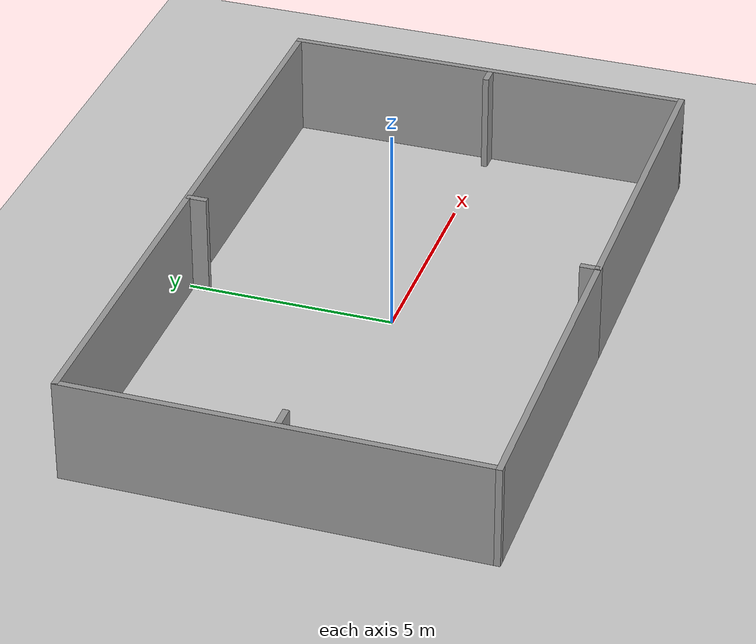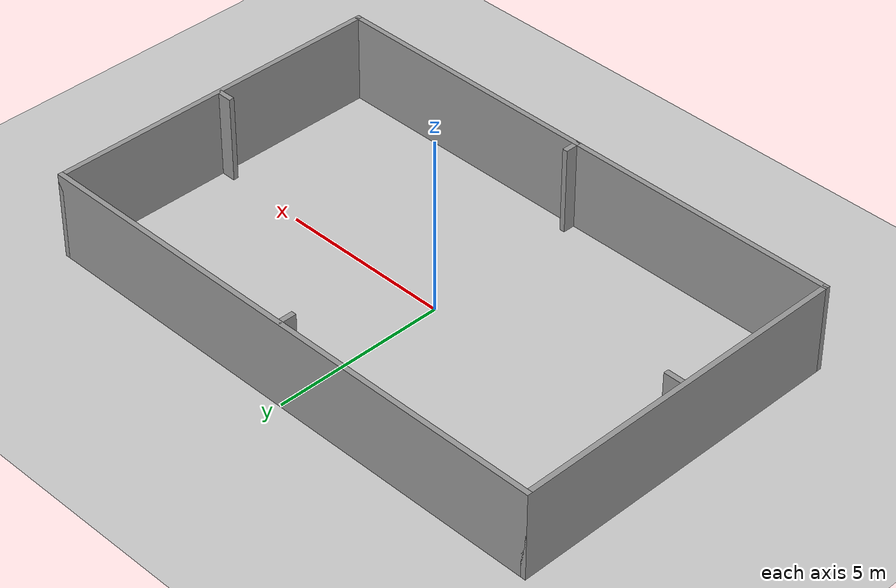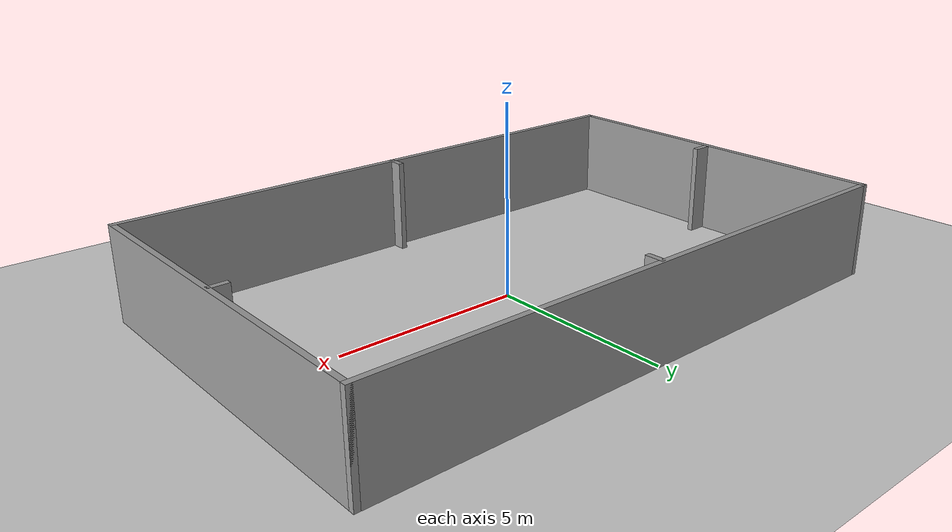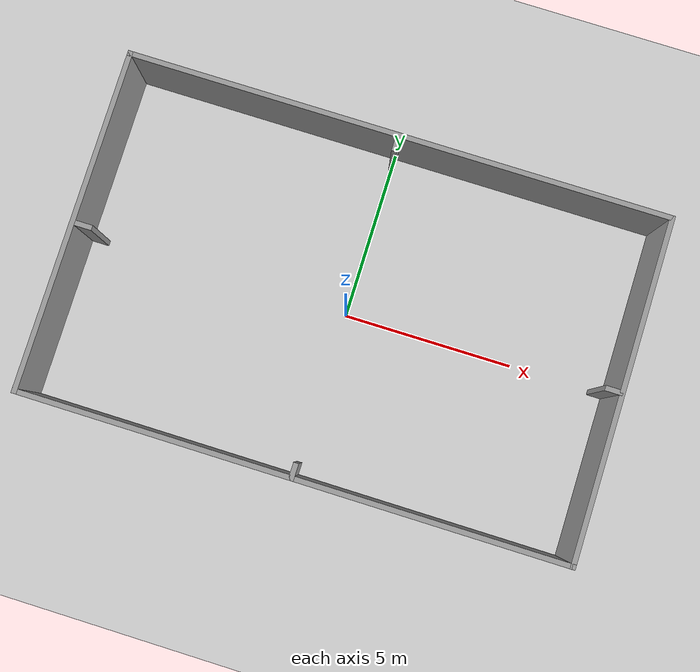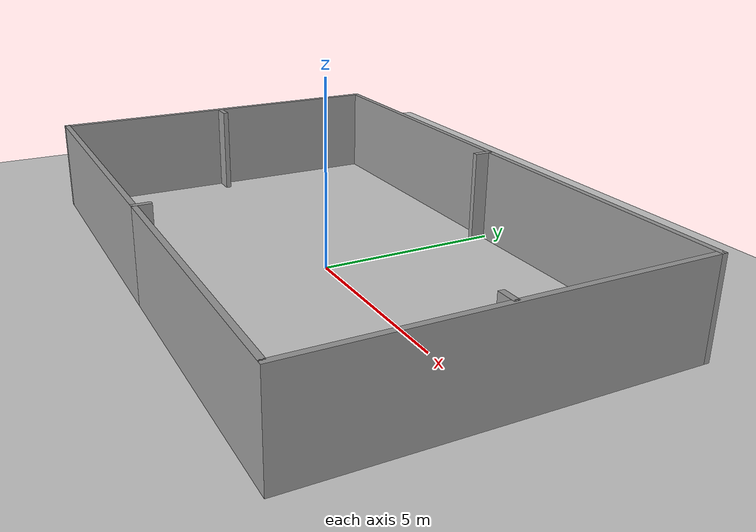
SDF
<sdf version="1.6">
 <world name="default">
  <light name="sun" type="directional">
   <pose>0 0 10 0 -0 0</pose>
   <diffuse>0.8 0.8 0.8 1</diffuse>
   <specular>0.2 0.2 0.2 1</specular>
   <attenuation>
    <range>1000</range>
    <constant>0.9</constant>
    <linear>0.01</linear>
    <quadratic>0.001</quadratic>
   </attenuation>
   <direction>-0.5 0.1 -0.9</direction>
  </light>
  <model name="ground_plane">
   <static>1</static>
   <link name="link">
    <collision name="collision">
     <geometry><plane><normal>0 0 1</normal><size>100 100</size></plane></geometry>
     <surface><friction><ode><mu>100</mu><mu2>50</mu2></ode></friction></surface>
    </collision>
    <visual name="visual">
     <cast_shadows>0</cast_shadows>
     <geometry><plane><normal>0 0 1</normal><size>100 100</size></plane></geometry>
     <material>
      <script><uri>file://media/materials/scripts/gazebo.material</uri><name>Gazebo/Grey</name></script>
     </material>
    </visual>
   </link>
  </model>
  <gravity>0 0 -9.8</gravity>
  <magnetic_field>6e-06 2.3e-05 -4.2e-05</magnetic_field>
  <atmosphere type="adiabatic"/>
  <physics name="default_physics" default="0" type="ode">
   <max_step_size>0.001</max_step_size>
   <real_time_factor>1</real_time_factor>
   <real_time_update_rate>1000</real_time_update_rate>
  </physics>
  <scene><ambient>0.4 0.4 0.4 1</ambient><background>0.7 0.7 0.7 1</background><shadows>1</shadows></scene>
  <spherical_coordinates>
   <surface_model>EARTH_WGS84</surface_model>
   <latitude_deg>0</latitude_deg>
   <longitude_deg>0</longitude_deg>
   <elevation>0</elevation>
   <heading_deg>0</heading_deg>
  </spherical_coordinates>
  <model name="playground_16_10">
   <pose>-0.01 0.055 0 0 -0 0</pose>
   <link name="Wall_16">
    <collision name="Wall_16_Collision">
     <geometry><box><size>8 0.15 2.5</size></box></geometry>
     <pose>0 0 1.25 0 -0 0</pose>
    </collision>
    <visual name="Wall_16_Visual">
     <pose>0 0 1.25 0 -0 0</pose>
     <geometry><box><size>8 0.15 2.5</size></box></geometry>
     <material>
      <script><uri>file://media/materials/scripts/gazebo.material</uri><name>Gazebo/Grey</name></script>
      <ambient>1 1 1 1</ambient>
     </material>
     <meta><layer>0</layer></meta>
    </visual>
    <pose>-3.925 -4.925 0 0 -0 3.14159</pose>
   </link>
   <link name="Wall_17">
    <collision name="Wall_17_Collision">
     <geometry><box><size>10 0.15 2.5</size></box></geometry>
     <pose>0 0 1.25 0 -0 0</pose>
    </collision>
    <visual name="Wall_17_Visual">
     <pose>0 0 1.25 0 -0 0</pose>
     <geometry><box><size>10 0.15 2.5</size></box></geometry>
     <material>
      <script><uri>file://media/materials/scripts/gazebo.material</uri><name>Gazebo/Grey</name></script>
      <ambient>1 1 1 1</ambient>
     </material>
     <meta><layer>0</layer></meta>
    </visual>
    <pose>-7.85 0 0 0 -0 1.5708</pose>
   </link>
   <link name="Wall_18">
    <collision name="Wall_18_Collision">
     <geometry><box><size>15.85 0.15 2.5</size></box></geometry>
     <pose>0 0 1.25 0 -0 0</pose>
    </collision>
    <visual name="Wall_18_Visual">
     <pose>0 0 1.25 0 -0 0</pose>
     <geometry><box><size>15.85 0.15 2.5</size></box></geometry>
     <material>
      <script><uri>file://media/materials/scripts/gazebo.material</uri><name>Gazebo/Grey</name></script>
      <ambient>1 1 1 1</ambient>
     </material>
     <meta><layer>0</layer></meta>
    </visual>
    <pose>0 4.925 0 0 -0 0</pose>
   </link>
   <link name="Wall_23">
    <collision name="Wall_23_Collision">
     <geometry><box><size>0.5 0.15 2.5</size></box></geometry>
     <pose>0 0 1.25 0 -0 0</pose>
    </collision>
    <visual name="Wall_23_Visual">
     <pose>0 0 1.25 0 -0 0</pose>
     <geometry><box><size>0.5 0.15 2.5</size></box></geometry>
     <material>
      <script><uri>file://media/materials/scripts/gazebo.material</uri><name>Gazebo/Grey</name></script>
      <ambient>1 1 1 1</ambient>
     </material>
     <meta><layer>0</layer></meta>
    </visual>
    <pose>0 -4.75 0 0 -0 1.5708</pose>
   </link>
   <link name="Wall_25">
    <collision name="Wall_25_Collision">
     <geometry><box><size>0.5 0.15 2.5</size></box></geometry>
     <pose>0 0 1.25 0 -0 0</pose>
    </collision>
    <visual name="Wall_25_Visual">
     <pose>0 0 1.25 0 -0 0</pose>
     <geometry><box><size>0.5 0.15 2.5</size></box></geometry>
     <material>
      <script><uri>file://media/materials/scripts/gazebo.material</uri><name>Gazebo/Grey</name></script>
      <ambient>1 1 1 1</ambient>
     </material>
     <meta><layer>0</layer></meta>
    </visual>
    <pose>0 4.7 0 0 -0 1.5708</pose>
   </link>
   <link name="Wall_28">
    <collision name="Wall_28_Collision">
     <geometry><box><size>0.5 0.15 2.5</size></box></geometry>
     <pose>0 0 1.25 0 -0 0</pose>
    </collision>
    <visual name="Wall_28_Visual">
     <pose>0 0 1.25 0 -0 0</pose>
     <geometry><box><size>0.5 0.15 2.5</size></box></geometry>
     <material>
      <script><uri>file://media/materials/scripts/gazebo.material</uri><name>Gazebo/Grey</name></script>
      <ambient>1 1 1 1</ambient>
     </material>
     <meta><layer>0</layer></meta>
    </visual>
    <pose>7.61369 -0.100793 0 0 -0 0</pose>
   </link>
   <link name="Wall_31">
    <collision name="Wall_31_Collision">
     <geometry><box><size>0.5 0.15 2.5</size></box></geometry>
     <pose>0 0 1.25 0 -0 0</pose>
    </collision>
    <visual name="Wall_31_Visual">
     <pose>0 0 1.25 0 -0 0</pose>
     <geometry><box><size>0.5 0.15 2.5</size></box></geometry>
     <material>
      <script><uri>file://media/materials/scripts/gazebo.material</uri><name>Gazebo/Grey</name></script>
      <ambient>1 1 1 1</ambient>
     </material>
     <meta><layer>0</layer></meta>
    </visual>
    <pose>-7.525 -0.075 0 0 -0 3.14159</pose>
   </link>
   <link name="Wall_5">
    <collision name="Wall_5_Collision">
     <geometry><box><size>8 0.15 2.5</size></box></geometry>
     <pose>0 0 1.25 0 -0 0</pose>
    </collision>
    <visual name="Wall_5_Visual">
     <pose>0 0 1.25 0 -0 0</pose>
     <geometry><box><size>8 0.15 2.5</size></box></geometry>
     <material>
      <script><uri>file://media/materials/scripts/gazebo.material</uri><name>Gazebo/Grey</name></script>
      <ambient>1 1 1 1</ambient>
     </material>
     <meta><layer>0</layer></meta>
    </visual>
    <pose>3.925 -4.925 0 0 -0 0</pose>
   </link>
   <link name="Wall_8">
    <collision name="Wall_8_Collision">
     <geometry><box><size>10 0.15 2.5</size></box></geometry>
     <pose>0 0 1.25 0 -0 0</pose>
    </collision>
    <visual name="Wall_8_Visual">
     <pose>0 0 1.25 0 -0 0</pose>
     <geometry><box><size>10 0.15 2.5</size></box></geometry>
     <material>
      <script><uri>file://media/materials/scripts/gazebo.material</uri><name>Gazebo/Grey</name></script>
      <ambient>1 1 1 1</ambient>
     </material>
     <meta><layer>0</layer></meta>
    </visual>
    <pose>7.85 0 0 0 -0 1.5708</pose>
   </link>
   <static>1</static>
  </model>
 </world>
</sdf>
